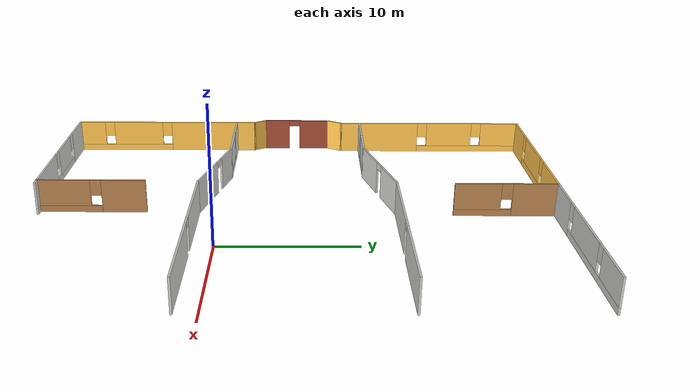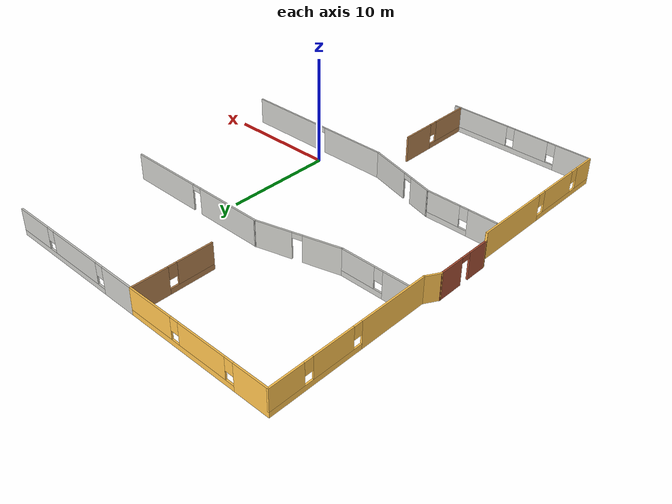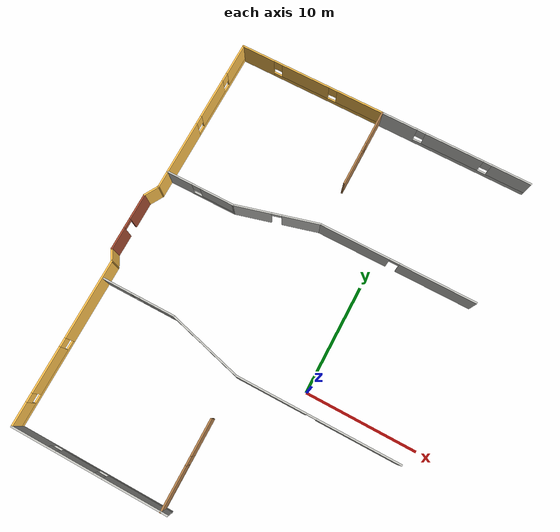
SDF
<sdf version="1.6">
 <model name="model">
  <pose>2.02965 5.6267 0 0 -0 0</pose>
  <link name="Wall_22">
   <pose>-21.3175 -11.3683 0 0 0 -1.5708</pose>
   <visual name="Wall_22_Visual_0">
    <pose>-3.98783 0 1.25 0 -0 0</pose>
    <geometry><box><size>7.27435 0.15 2.5</size></box></geometry>
    <material>
     <script><uri>file://media/materials/scripts/gazebo.material</uri><name>Gazebo/Grey</name></script>
     <ambient>1 0.764706 0.305882 1</ambient>
    </material>
    <meta><layer>0</layer></meta>
   </visual>
   <collision name="Wall_22_Collision_0">
    <geometry><box><size>7.27435 0.15 2.5</size></box></geometry>
    <pose>-3.98783 0 1.25 0 -0 0</pose>
   </collision>
   <visual name="Wall_22_Visual_1">
    <pose>3.63717 0 0.25 0 -0 0</pose>
    <geometry><box><size>7.97565 0.15 0.5</size></box></geometry>
    <material>
     <script><uri>file://media/materials/scripts/gazebo.material</uri><name>Gazebo/Grey</name></script>
     <ambient>1 0.764706 0.305882 1</ambient>
    </material>
    <meta><layer>0</layer></meta>
   </visual>
   <collision name="Wall_22_Collision_1">
    <geometry><box><size>7.97565 0.15 0.5</size></box></geometry>
    <pose>3.63717 0 0.25 0 -0 0</pose>
   </collision>
   <visual name="Wall_22_Visual_2">
    <pose>2.53115 0 1.5 0 -0 0</pose>
    <geometry><box><size>4.16361 0.15 2</size></box></geometry>
    <material>
     <script><uri>file://media/materials/scripts/gazebo.material</uri><name>Gazebo/Grey</name></script>
     <ambient>1 0.764706 0.305882 1</ambient>
    </material>
    <meta><layer>0</layer></meta>
   </visual>
   <collision name="Wall_22_Collision_2">
    <geometry><box><size>4.16361 0.15 2</size></box></geometry>
    <pose>2.53115 0 1.5 0 -0 0</pose>
   </collision>
   <visual name="Wall_22_Visual_3">
    <pose>6.51898 0 1.5 0 -0 0</pose>
    <geometry><box><size>2.21204 0.15 2</size></box></geometry>
    <material>
     <script><uri>file://media/materials/scripts/gazebo.material</uri><name>Gazebo/Grey</name></script>
     <ambient>1 0.764706 0.305882 1</ambient>
    </material>
    <meta><layer>0</layer></meta>
   </visual>
   <collision name="Wall_22_Collision_3">
    <geometry><box><size>2.21204 0.15 2</size></box></geometry>
    <pose>6.51898 0 1.5 0 -0 0</pose>
   </collision>
   <visual name="Wall_22_Visual_4">
    <pose>0.049349 0 1.9 0 -0 0</pose>
    <geometry><box><size>0.8 0.15 1.2</size></box></geometry>
    <material>
     <script><uri>file://media/materials/scripts/gazebo.material</uri><name>Gazebo/Grey</name></script>
     <ambient>1 0.764706 0.305882 1</ambient>
    </material>
    <meta><layer>0</layer></meta>
   </visual>
   <collision name="Wall_22_Collision_4">
    <geometry><box><size>0.8 0.15 1.2</size></box></geometry>
    <pose>0.049349 0 1.9 0 -0 0</pose>
   </collision>
   <visual name="Wall_22_Visual_5">
    <pose>5.01296 0 1.9 0 -0 0</pose>
    <geometry><box><size>0.8 0.15 1.2</size></box></geometry>
    <material>
     <script><uri>file://media/materials/scripts/gazebo.material</uri><name>Gazebo/Grey</name></script>
     <ambient>1 0.764706 0.305882 1</ambient>
    </material>
    <meta><layer>0</layer></meta>
   </visual>
   <collision name="Wall_22_Collision_5">
    <geometry><box><size>0.8 0.15 1.2</size></box></geometry>
    <pose>5.01296 0 1.9 0 -0 0</pose>
   </collision>
  </link>
  <link name="Wall_23">
   <pose>-14.2675 -18.9183 0 0 -0 0</pose>
   <visual name="Wall_23_Visual_0">
    <pose>-5.44036 0 1.25 0 -0 0</pose>
    <geometry><box><size>3.36928 0.15 2.5</size></box></geometry>
    <material>
     <script><uri>file://media/materials/scripts/gazebo.material</uri><name>Gazebo/CeilingTiled</name></script>
     <ambient>1 0.764706 0.305882 1</ambient>
    </material>
    <meta><layer>0</layer></meta>
   </visual>
   <collision name="Wall_23_Collision_0">
    <geometry><box><size>3.36928 0.15 2.5</size></box></geometry>
    <pose>-5.44036 0 1.25 0 -0 0</pose>
   </collision>
   <visual name="Wall_23_Visual_1">
    <pose>1.68464 0 0.25 0 -0 0</pose>
    <geometry><box><size>10.8807 0.15 0.5</size></box></geometry>
    <material>
     <script><uri>file://media/materials/scripts/gazebo.material</uri><name>Gazebo/CeilingTiled</name></script>
     <ambient>1 0.764706 0.305882 1</ambient>
    </material>
    <meta><layer>0</layer></meta>
   </visual>
   <collision name="Wall_23_Collision_1">
    <geometry><box><size>10.8807 0.15 0.5</size></box></geometry>
    <pose>1.68464 0 0.25 0 -0 0</pose>
   </collision>
   <visual name="Wall_23_Visual_2">
    <pose>-1.24407 0 1.5 0 -0 0</pose>
    <geometry><box><size>3.42331 0.15 2</size></box></geometry>
    <material>
     <script><uri>file://media/materials/scripts/gazebo.material</uri><name>Gazebo/CeilingTiled</name></script>
     <ambient>1 0.764706 0.305882 1</ambient>
    </material>
    <meta><layer>0</layer></meta>
   </visual>
   <collision name="Wall_23_Collision_2">
    <geometry><box><size>3.42331 0.15 2</size></box></geometry>
    <pose>-1.24407 0 1.5 0 -0 0</pose>
   </collision>
   <visual name="Wall_23_Visual_3">
    <pose>4.19629 0 1.5 0 -0 0</pose>
    <geometry><box><size>5.85741 0.15 2</size></box></geometry>
    <material>
     <script><uri>file://media/materials/scripts/gazebo.material</uri><name>Gazebo/CeilingTiled</name></script>
     <ambient>1 0.764706 0.305882 1</ambient>
    </material>
    <meta><layer>0</layer></meta>
   </visual>
   <collision name="Wall_23_Collision_3">
    <geometry><box><size>5.85741 0.15 2</size></box></geometry>
    <pose>4.19629 0 1.5 0 -0 0</pose>
   </collision>
   <visual name="Wall_23_Visual_4">
    <pose>-3.35572 0 1.9 0 -0 0</pose>
    <geometry><box><size>0.8 0.15 1.2</size></box></geometry>
    <material>
     <script><uri>file://media/materials/scripts/gazebo.material</uri><name>Gazebo/CeilingTiled</name></script>
     <ambient>1 0.764706 0.305882 1</ambient>
    </material>
    <meta><layer>0</layer></meta>
   </visual>
   <collision name="Wall_23_Collision_4">
    <geometry><box><size>0.8 0.15 1.2</size></box></geometry>
    <pose>-3.35572 0 1.9 0 -0 0</pose>
   </collision>
   <visual name="Wall_23_Visual_5">
    <pose>0.867585 0 1.9 0 -0 0</pose>
    <geometry><box><size>0.8 0.15 1.2</size></box></geometry>
    <material>
     <script><uri>file://media/materials/scripts/gazebo.material</uri><name>Gazebo/CeilingTiled</name></script>
     <ambient>1 0.764706 0.305882 1</ambient>
    </material>
    <meta><layer>0</layer></meta>
   </visual>
   <collision name="Wall_23_Collision_5">
    <geometry><box><size>0.8 0.15 1.2</size></box></geometry>
    <pose>0.867585 0 1.9 0 -0 0</pose>
   </collision>
  </link>
  <link name="Wall_36">
   <collision name="Wall_36_Collision">
    <geometry><box><size>1.25 0.15 2.5</size></box></geometry>
    <pose>0 0 1.25 0 -0 0</pose>
   </collision>
   <visual name="Wall_36_Visual">
    <pose>0 0 1.25 0 -0 0</pose>
    <geometry><box><size>1.25 0.15 2.5</size></box></geometry>
    <material>
     <script><uri>file://media/materials/scripts/gazebo.material</uri><name>Gazebo/Grey</name></script>
     <ambient>1 0.764706 0.305882 1</ambient>
    </material>
    <meta><layer>0</layer></meta>
   </visual>
   <pose>-21.5925 -3.34197 0 0 -0 2.0944</pose>
  </link>
  <link name="Wall_37">
   <pose>-21.8675 -0.190651 0 0 -0 1.5708</pose>
   <visual name="Wall_37_Visual_0">
    <pose>-1.69498 0 1.25 0 -0 0</pose>
    <geometry><box><size>2.11003 0.15 2.5</size></box></geometry>
    <material>
     <script><uri>file://media/materials/scripts/gazebo.material</uri><name>Gazebo/Bricks</name></script>
     <ambient>1 1 1 1</ambient>
    </material>
    <meta><layer>0</layer></meta>
   </visual>
   <collision name="Wall_37_Collision_0">
    <geometry><box><size>2.11003 0.15 2.5</size></box></geometry>
    <pose>-1.69498 0 1.25 0 -0 0</pose>
   </collision>
   <visual name="Wall_37_Visual_1">
    <pose>1.50502 0 1.25 0 -0 0</pose>
    <geometry><box><size>2.48997 0.15 2.5</size></box></geometry>
    <material>
     <script><uri>file://media/materials/scripts/gazebo.material</uri><name>Gazebo/Bricks</name></script>
     <ambient>1 1 1 1</ambient>
    </material>
    <meta><layer>0</layer></meta>
   </visual>
   <collision name="Wall_37_Collision_1">
    <geometry><box><size>2.48997 0.15 2.5</size></box></geometry>
    <pose>1.50502 0 1.25 0 -0 0</pose>
   </collision>
   <visual name="Wall_37_Visual_2">
    <pose>-0.189968 0 2.25 0 -0 0</pose>
    <geometry><box><size>0.9 0.15 0.5</size></box></geometry>
    <material>
     <script><uri>file://media/materials/scripts/gazebo.material</uri><name>Gazebo/Bricks</name></script>
     <ambient>1 1 1 1</ambient>
    </material>
    <meta><layer>0</layer></meta>
   </visual>
   <collision name="Wall_37_Collision_2">
    <geometry><box><size>0.9 0.15 0.5</size></box></geometry>
    <pose>-0.189968 0 2.25 0 -0 0</pose>
   </collision>
  </link>
  <link name="Wall_38">
   <collision name="Wall_38_Collision">
    <geometry><box><size>1.5 0.15 2.5</size></box></geometry>
    <pose>0 0 1.25 0 -0 0</pose>
   </collision>
   <visual name="Wall_38_Visual">
    <pose>0 0 1.25 0 -0 0</pose>
    <geometry><box><size>1.5 0.15 2.5</size></box></geometry>
    <material>
     <script><uri>file://media/materials/scripts/gazebo.material</uri><name>Gazebo/Grey</name></script>
     <ambient>1 0.764706 0.305882 1</ambient>
    </material>
    <meta><layer>0</layer></meta>
   </visual>
   <pose>-21.53 3.06892 0 0 -0 1.0472</pose>
  </link>
  <link name="Wall_40">
   <pose>-21.1925 11.2035 0 0 -0 1.5708</pose>
   <visual name="Wall_40_Visual_0">
    <pose>-4.29734 0 1.25 0 -0 0</pose>
    <geometry><box><size>6.65533 0.15 2.5</size></box></geometry>
    <material>
     <script><uri>file://media/materials/scripts/gazebo.material</uri><name>Gazebo/Grey</name></script>
     <ambient>1 0.764706 0.305882 1</ambient>
    </material>
    <meta><layer>0</layer></meta>
   </visual>
   <collision name="Wall_40_Collision_0">
    <geometry><box><size>6.65533 0.15 2.5</size></box></geometry>
    <pose>-4.29734 0 1.25 0 -0 0</pose>
   </collision>
   <visual name="Wall_40_Visual_1">
    <pose>3.32766 0 0.25 0 -0 0</pose>
    <geometry><box><size>8.59467 0.15 0.5</size></box></geometry>
    <material>
     <script><uri>file://media/materials/scripts/gazebo.material</uri><name>Gazebo/Grey</name></script>
     <ambient>1 0.764706 0.305882 1</ambient>
    </material>
    <meta><layer>0</layer></meta>
   </visual>
   <collision name="Wall_40_Collision_1">
    <geometry><box><size>8.59467 0.15 0.5</size></box></geometry>
    <pose>3.32766 0 0.25 0 -0 0</pose>
   </collision>
   <visual name="Wall_40_Visual_2">
    <pose>1.74939 0 1.5 0 -0 0</pose>
    <geometry><box><size>3.83812 0.15 2</size></box></geometry>
    <material>
     <script><uri>file://media/materials/scripts/gazebo.material</uri><name>Gazebo/Grey</name></script>
     <ambient>1 0.764706 0.305882 1</ambient>
    </material>
    <meta><layer>0</layer></meta>
   </visual>
   <collision name="Wall_40_Collision_2">
    <geometry><box><size>3.83812 0.15 2</size></box></geometry>
    <pose>1.74939 0 1.5 0 -0 0</pose>
   </collision>
   <visual name="Wall_40_Visual_3">
    <pose>6.04673 0 1.5 0 -0 0</pose>
    <geometry><box><size>3.15655 0.15 2</size></box></geometry>
    <material>
     <script><uri>file://media/materials/scripts/gazebo.material</uri><name>Gazebo/Grey</name></script>
     <ambient>1 0.764706 0.305882 1</ambient>
    </material>
    <meta><layer>0</layer></meta>
   </visual>
   <collision name="Wall_40_Collision_3">
    <geometry><box><size>3.15655 0.15 2</size></box></geometry>
    <pose>6.04673 0 1.5 0 -0 0</pose>
   </collision>
   <visual name="Wall_40_Visual_4">
    <pose>-0.569674 0 1.9 0 -0 0</pose>
    <geometry><box><size>0.8 0.15 1.2</size></box></geometry>
    <material>
     <script><uri>file://media/materials/scripts/gazebo.material</uri><name>Gazebo/Grey</name></script>
     <ambient>1 0.764706 0.305882 1</ambient>
    </material>
    <meta><layer>0</layer></meta>
   </visual>
   <collision name="Wall_40_Collision_4">
    <geometry><box><size>0.8 0.15 1.2</size></box></geometry>
    <pose>-0.569674 0 1.9 0 -0 0</pose>
   </collision>
   <visual name="Wall_40_Visual_5">
    <pose>4.06845 0 1.9 0 -0 0</pose>
    <geometry><box><size>0.8 0.15 1.2</size></box></geometry>
    <material>
     <script><uri>file://media/materials/scripts/gazebo.material</uri><name>Gazebo/Grey</name></script>
     <ambient>1 0.764706 0.305882 1</ambient>
    </material>
    <meta><layer>0</layer></meta>
   </visual>
   <collision name="Wall_40_Collision_5">
    <geometry><box><size>0.8 0.15 1.2</size></box></geometry>
    <pose>4.06845 0 1.9 0 -0 0</pose>
   </collision>
  </link>
  <link name="Wall_51">
   <pose>-14.2675 18.7535 0 0 -0 0</pose>
   <visual name="Wall_51_Visual_0">
    <pose>-5.3786 0 1.25 0 -0 0</pose>
    <geometry><box><size>3.2428 0.15 2.5</size></box></geometry>
    <material>
     <script><uri>file://media/materials/scripts/gazebo.material</uri><name>Gazebo/Grey</name></script>
     <ambient>1 0.764706 0.305882 1</ambient>
    </material>
    <meta><layer>0</layer></meta>
   </visual>
   <collision name="Wall_51_Collision_0">
    <geometry><box><size>3.2428 0.15 2.5</size></box></geometry>
    <pose>-5.3786 0 1.25 0 -0 0</pose>
   </collision>
   <visual name="Wall_51_Visual_1">
    <pose>1.6214 0 0.25 0 -0 0</pose>
    <geometry><box><size>10.7572 0.15 0.5</size></box></geometry>
    <material>
     <script><uri>file://media/materials/scripts/gazebo.material</uri><name>Gazebo/Grey</name></script>
     <ambient>1 0.764706 0.305882 1</ambient>
    </material>
    <meta><layer>0</layer></meta>
   </visual>
   <collision name="Wall_51_Collision_1">
    <geometry><box><size>10.7572 0.15 0.5</size></box></geometry>
    <pose>1.6214 0 0.25 0 -0 0</pose>
   </collision>
   <visual name="Wall_51_Visual_2">
    <pose>-0.618681 0 1.5 0 -0 0</pose>
    <geometry><box><size>4.67704 0.15 2</size></box></geometry>
    <material>
     <script><uri>file://media/materials/scripts/gazebo.material</uri><name>Gazebo/Grey</name></script>
     <ambient>1 0.764706 0.305882 1</ambient>
    </material>
    <meta><layer>0</layer></meta>
   </visual>
   <collision name="Wall_51_Collision_2">
    <geometry><box><size>4.67704 0.15 2</size></box></geometry>
    <pose>-0.618681 0 1.5 0 -0 0</pose>
   </collision>
   <visual name="Wall_51_Visual_3">
    <pose>4.75992 0 1.5 0 -0 0</pose>
    <geometry><box><size>4.48016 0.15 2</size></box></geometry>
    <material>
     <script><uri>file://media/materials/scripts/gazebo.material</uri><name>Gazebo/Grey</name></script>
     <ambient>1 0.764706 0.305882 1</ambient>
    </material>
    <meta><layer>0</layer></meta>
   </visual>
   <collision name="Wall_51_Collision_3">
    <geometry><box><size>4.48016 0.15 2</size></box></geometry>
    <pose>4.75992 0 1.5 0 -0 0</pose>
   </collision>
   <visual name="Wall_51_Visual_4">
    <pose>-3.3572 0 1.9 0 -0 0</pose>
    <geometry><box><size>0.8 0.15 1.2</size></box></geometry>
    <material>
     <script><uri>file://media/materials/scripts/gazebo.material</uri><name>Gazebo/Grey</name></script>
     <ambient>1 0.764706 0.305882 1</ambient>
    </material>
    <meta><layer>0</layer></meta>
   </visual>
   <collision name="Wall_51_Collision_4">
    <geometry><box><size>0.8 0.15 1.2</size></box></geometry>
    <pose>-3.3572 0 1.9 0 -0 0</pose>
   </collision>
   <visual name="Wall_51_Visual_5">
    <pose>2.11984 0 1.9 0 -0 0</pose>
    <geometry><box><size>0.8 0.15 1.2</size></box></geometry>
    <material>
     <script><uri>file://media/materials/scripts/gazebo.material</uri><name>Gazebo/Grey</name></script>
     <ambient>1 0.764706 0.305882 1</ambient>
    </material>
    <meta><layer>0</layer></meta>
   </visual>
   <collision name="Wall_51_Collision_5">
    <geometry><box><size>0.8 0.15 1.2</size></box></geometry>
    <pose>2.11984 0 1.9 0 -0 0</pose>
   </collision>
  </link>
  <link name="Wall_52">
   <pose>-0.292493 18.7535 0 0 -0 0</pose>
   <visual name="Wall_52_Visual_0">
    <pose>-5.39608 0 1.25 0 -0 0</pose>
    <geometry><box><size>3.45785 0.15 2.5</size></box></geometry>
    <material>
     <script><uri>file://media/materials/scripts/gazebo.material</uri><name>Gazebo/CeilingTiled</name></script>
     <ambient>1 0.764706 0.305882 1</ambient>
    </material>
    <meta><layer>0</layer></meta>
   </visual>
   <collision name="Wall_52_Collision_0">
    <geometry><box><size>3.45785 0.15 2.5</size></box></geometry>
    <pose>-5.39608 0 1.25 0 -0 0</pose>
   </collision>
   <visual name="Wall_52_Visual_1">
    <pose>1.72892 0 0.25 0 -0 0</pose>
    <geometry><box><size>10.7922 0.15 0.5</size></box></geometry>
    <material>
     <script><uri>file://media/materials/scripts/gazebo.material</uri><name>Gazebo/CeilingTiled</name></script>
     <ambient>1 0.764706 0.305882 1</ambient>
    </material>
    <meta><layer>0</layer></meta>
   </visual>
   <collision name="Wall_52_Collision_1">
    <geometry><box><size>10.7922 0.15 0.5</size></box></geometry>
    <pose>1.72892 0 0.25 0 -0 0</pose>
   </collision>
   <visual name="Wall_52_Visual_2">
    <pose>-0.115746 0 1.5 0 -0 0</pose>
    <geometry><box><size>5.50281 0.15 2</size></box></geometry>
    <material>
     <script><uri>file://media/materials/scripts/gazebo.material</uri><name>Gazebo/CeilingTiled</name></script>
     <ambient>1 0.764706 0.305882 1</ambient>
    </material>
    <meta><layer>0</layer></meta>
   </visual>
   <collision name="Wall_52_Collision_2">
    <geometry><box><size>5.50281 0.15 2</size></box></geometry>
    <pose>-0.115746 0 1.5 0 -0 0</pose>
   </collision>
   <visual name="Wall_52_Visual_3">
    <pose>5.28033 0 1.5 0 -0 0</pose>
    <geometry><box><size>3.68934 0.15 2</size></box></geometry>
    <material>
     <script><uri>file://media/materials/scripts/gazebo.material</uri><name>Gazebo/CeilingTiled</name></script>
     <ambient>1 0.764706 0.305882 1</ambient>
    </material>
    <meta><layer>0</layer></meta>
   </visual>
   <collision name="Wall_52_Collision_3">
    <geometry><box><size>3.68934 0.15 2</size></box></geometry>
    <pose>5.28033 0 1.5 0 -0 0</pose>
   </collision>
   <visual name="Wall_52_Visual_4">
    <pose>-3.26715 0 1.9 0 -0 0</pose>
    <geometry><box><size>0.8 0.15 1.2</size></box></geometry>
    <material>
     <script><uri>file://media/materials/scripts/gazebo.material</uri><name>Gazebo/CeilingTiled</name></script>
     <ambient>1 0.764706 0.305882 1</ambient>
    </material>
    <meta><layer>0</layer></meta>
   </visual>
   <collision name="Wall_52_Collision_4">
    <geometry><box><size>0.8 0.15 1.2</size></box></geometry>
    <pose>-3.26715 0 1.9 0 -0 0</pose>
   </collision>
   <visual name="Wall_52_Visual_5">
    <pose>3.03566 0 1.9 0 -0 0</pose>
    <geometry><box><size>0.8 0.15 1.2</size></box></geometry>
    <material>
     <script><uri>file://media/materials/scripts/gazebo.material</uri><name>Gazebo/CeilingTiled</name></script>
     <ambient>1 0.764706 0.305882 1</ambient>
    </material>
    <meta><layer>0</layer></meta>
   </visual>
   <collision name="Wall_52_Collision_5">
    <geometry><box><size>0.8 0.15 1.2</size></box></geometry>
    <pose>3.03566 0 1.9 0 -0 0</pose>
   </collision>
  </link>
  <link name="Wall_55">
   <pose>-17.9939 5.2199 0 0 -0 0</pose>
   <visual name="Wall_55_Visual_0">
    <pose>-2.01287 0 1.25 0 -0 0</pose>
    <geometry><box><size>2.47427 0.15 2.5</size></box></geometry>
    <material>
     <script><uri>file://media/materials/scripts/gazebo.material</uri><name>Gazebo/CeilingTiled</name></script>
     <ambient>0.333333 0.666667 1 1</ambient>
    </material>
    <meta><layer>0</layer></meta>
   </visual>
   <collision name="Wall_55_Collision_0">
    <geometry><box><size>2.47427 0.15 2.5</size></box></geometry>
    <pose>-2.01287 0 1.25 0 -0 0</pose>
   </collision>
   <visual name="Wall_55_Visual_1">
    <pose>1.23714 0 0.25 0 -0 0</pose>
    <geometry><box><size>4.02573 0.15 0.5</size></box></geometry>
    <material>
     <script><uri>file://media/materials/scripts/gazebo.material</uri><name>Gazebo/CeilingTiled</name></script>
     <ambient>0.333333 0.666667 1 1</ambient>
    </material>
    <meta><layer>0</layer></meta>
   </visual>
   <collision name="Wall_55_Collision_1">
    <geometry><box><size>4.02573 0.15 0.5</size></box></geometry>
    <pose>1.23714 0 0.25 0 -0 0</pose>
   </collision>
   <visual name="Wall_55_Visual_2">
    <pose>1.63714 0 1.5 0 -0 0</pose>
    <geometry><box><size>3.22573 0.15 2</size></box></geometry>
    <material>
     <script><uri>file://media/materials/scripts/gazebo.material</uri><name>Gazebo/CeilingTiled</name></script>
     <ambient>0.333333 0.666667 1 1</ambient>
    </material>
    <meta><layer>0</layer></meta>
   </visual>
   <collision name="Wall_55_Collision_2">
    <geometry><box><size>3.22573 0.15 2</size></box></geometry>
    <pose>1.63714 0 1.5 0 -0 0</pose>
   </collision>
   <visual name="Wall_55_Visual_3">
    <pose>-0.37573 0 1.9 0 -0 0</pose>
    <geometry><box><size>0.8 0.15 1.2</size></box></geometry>
    <material>
     <script><uri>file://media/materials/scripts/gazebo.material</uri><name>Gazebo/CeilingTiled</name></script>
     <ambient>0.333333 0.666667 1 1</ambient>
    </material>
    <meta><layer>0</layer></meta>
   </visual>
   <collision name="Wall_55_Collision_3">
    <geometry><box><size>0.8 0.15 1.2</size></box></geometry>
    <pose>-0.37573 0 1.9 0 -0 0</pose>
   </collision>
  </link>
  <link name="Wall_56">
   <pose>-11.1483 6.20341 0 0 -0 0.261799</pose>
   <visual name="Wall_56_Visual_0">
    <pose>-2.15033 0 1.25 0 -0 0</pose>
    <geometry><box><size>3.44934 0.15 2.5</size></box></geometry>
    <material>
     <script><uri>file://media/materials/scripts/gazebo.material</uri><name>Gazebo/CeilingTiled</name></script>
     <ambient>0.333333 0.666667 1 1</ambient>
    </material>
    <meta><layer>0</layer></meta>
   </visual>
   <collision name="Wall_56_Collision_0">
    <geometry><box><size>3.44934 0.15 2.5</size></box></geometry>
    <pose>-2.15033 0 1.25 0 -0 0</pose>
   </collision>
   <visual name="Wall_56_Visual_1">
    <pose>2.17467 0 1.25 0 -0 0</pose>
    <geometry><box><size>3.40066 0.15 2.5</size></box></geometry>
    <material>
     <script><uri>file://media/materials/scripts/gazebo.material</uri><name>Gazebo/CeilingTiled</name></script>
     <ambient>0.333333 0.666667 1 1</ambient>
    </material>
    <meta><layer>0</layer></meta>
   </visual>
   <collision name="Wall_56_Collision_1">
    <geometry><box><size>3.40066 0.15 2.5</size></box></geometry>
    <pose>2.17467 0 1.25 0 -0 0</pose>
   </collision>
   <visual name="Wall_56_Visual_2">
    <pose>0.024343 0 2.25 0 -0 0</pose>
    <geometry><box><size>0.9 0.15 0.5</size></box></geometry>
    <material>
     <script><uri>file://media/materials/scripts/gazebo.material</uri><name>Gazebo/CeilingTiled</name></script>
     <ambient>0.333333 0.666667 1 1</ambient>
    </material>
    <meta><layer>0</layer></meta>
   </visual>
   <collision name="Wall_56_Collision_2">
    <geometry><box><size>0.9 0.15 0.5</size></box></geometry>
    <pose>0.024343 0 2.25 0 -0 0</pose>
   </collision>
  </link>
  <link name="Wall_57">
   <pose>-0.302825 7.18693 0 0 -0 0</pose>
   <visual name="Wall_57_Visual_0">
    <pose>-3.97135 0 1.25 0 -0 0</pose>
    <geometry><box><size>6.55729 0.15 2.5</size></box></geometry>
    <material>
     <script><uri>file://media/materials/scripts/gazebo.material</uri><name>Gazebo/CeilingTiled</name></script>
     <ambient>0.333333 0.666667 1 1</ambient>
    </material>
    <meta><layer>0</layer></meta>
   </visual>
   <collision name="Wall_57_Collision_0">
    <geometry><box><size>6.55729 0.15 2.5</size></box></geometry>
    <pose>-3.97135 0 1.25 0 -0 0</pose>
   </collision>
   <visual name="Wall_57_Visual_1">
    <pose>3.72865 0 1.25 0 -0 0</pose>
    <geometry><box><size>7.04271 0.15 2.5</size></box></geometry>
    <material>
     <script><uri>file://media/materials/scripts/gazebo.material</uri><name>Gazebo/CeilingTiled</name></script>
     <ambient>0.333333 0.666667 1 1</ambient>
    </material>
    <meta><layer>0</layer></meta>
   </visual>
   <collision name="Wall_57_Collision_1">
    <geometry><box><size>7.04271 0.15 2.5</size></box></geometry>
    <pose>3.72865 0 1.25 0 -0 0</pose>
   </collision>
   <visual name="Wall_57_Visual_2">
    <pose>-0.242707 0 2.25 0 -0 0</pose>
    <geometry><box><size>0.9 0.15 0.5</size></box></geometry>
    <material>
     <script><uri>file://media/materials/scripts/gazebo.material</uri><name>Gazebo/CeilingTiled</name></script>
     <ambient>0.333333 0.666667 1 1</ambient>
    </material>
    <meta><layer>0</layer></meta>
   </visual>
   <collision name="Wall_57_Collision_2">
    <geometry><box><size>0.9 0.15 0.5</size></box></geometry>
    <pose>-0.242707 0 2.25 0 -0 0</pose>
   </collision>
  </link>
  <link name="Wall_61">
   <pose>-17.7875 -5.35828 0 0 -0 0</pose>
   <visual name="Wall_61_Visual_0">
    <pose>-2.04403 0 1.25 0 -0 0</pose>
    <geometry><box><size>2.66193 0.15 2.5</size></box></geometry>
    <material>
     <script><uri>file://media/materials/scripts/gazebo.material</uri><name>Gazebo/CeilingTiled</name></script>
     <ambient>0.333333 0.666667 1 1</ambient>
    </material>
    <meta><layer>0</layer></meta>
   </visual>
   <collision name="Wall_61_Collision_0">
    <geometry><box><size>2.66193 0.15 2.5</size></box></geometry>
    <pose>-2.04403 0 1.25 0 -0 0</pose>
   </collision>
   <visual name="Wall_61_Visual_1">
    <pose>1.33097 0 0.25 0 -0 0</pose>
    <geometry><box><size>4.08807 0.15 0.5</size></box></geometry>
    <material>
     <script><uri>file://media/materials/scripts/gazebo.material</uri><name>Gazebo/CeilingTiled</name></script>
     <ambient>0.333333 0.666667 1 1</ambient>
    </material>
    <meta><layer>0</layer></meta>
   </visual>
   <collision name="Wall_61_Collision_1">
    <geometry><box><size>4.08807 0.15 0.5</size></box></geometry>
    <pose>1.33097 0 0.25 0 -0 0</pose>
   </collision>
   <visual name="Wall_61_Visual_2">
    <pose>1.73097 0 1.5 0 -0 0</pose>
    <geometry><box><size>3.28807 0.15 2</size></box></geometry>
    <material>
     <script><uri>file://media/materials/scripts/gazebo.material</uri><name>Gazebo/CeilingTiled</name></script>
     <ambient>0.333333 0.666667 1 1</ambient>
    </material>
    <meta><layer>0</layer></meta>
   </visual>
   <collision name="Wall_61_Collision_2">
    <geometry><box><size>3.28807 0.15 2</size></box></geometry>
    <pose>1.73097 0 1.5 0 -0 0</pose>
   </collision>
   <visual name="Wall_61_Visual_3">
    <pose>-0.313068 0 1.9 0 -0 0</pose>
    <geometry><box><size>0.8 0.15 1.2</size></box></geometry>
    <material>
     <script><uri>file://media/materials/scripts/gazebo.material</uri><name>Gazebo/CeilingTiled</name></script>
     <ambient>0.333333 0.666667 1 1</ambient>
    </material>
    <meta><layer>0</layer></meta>
   </visual>
   <collision name="Wall_61_Collision_3">
    <geometry><box><size>0.8 0.15 1.2</size></box></geometry>
    <pose>-0.313068 0 1.9 0 -0 0</pose>
   </collision>
  </link>
  <link name="Wall_62">
   <pose>-11.0585 -6.27709 0 0 0 -0.261799</pose>
   <visual name="Wall_62_Visual_0">
    <pose>-2.4588 0 1.25 0 -0 0</pose>
    <geometry><box><size>2.33239 0.15 2.5</size></box></geometry>
    <material>
     <script><uri>file://media/materials/scripts/gazebo.material</uri><name>Gazebo/CeilingTiled</name></script>
     <ambient>0.333333 0.666667 1 1</ambient>
    </material>
    <meta><layer>0</layer></meta>
   </visual>
   <collision name="Wall_62_Collision_0">
    <geometry><box><size>2.33239 0.15 2.5</size></box></geometry>
    <pose>-2.4588 0 1.25 0 -0 0</pose>
   </collision>
   <visual name="Wall_62_Visual_1">
    <pose>1.6162 0 1.25 0 -0 0</pose>
    <geometry><box><size>4.01761 0.15 2.5</size></box></geometry>
    <material>
     <script><uri>file://media/materials/scripts/gazebo.material</uri><name>Gazebo/CeilingTiled</name></script>
     <ambient>0.333333 0.666667 1 1</ambient>
    </material>
    <meta><layer>0</layer></meta>
   </visual>
   <collision name="Wall_62_Collision_1">
    <geometry><box><size>4.01761 0.15 2.5</size></box></geometry>
    <pose>1.6162 0 1.25 0 -0 0</pose>
   </collision>
   <visual name="Wall_62_Visual_2">
    <pose>-0.842608 0 2.25 0 -0 0</pose>
    <geometry><box><size>0.9 0.15 0.5</size></box></geometry>
    <material>
     <script><uri>file://media/materials/scripts/gazebo.material</uri><name>Gazebo/CeilingTiled</name></script>
     <ambient>0.333333 0.666667 1 1</ambient>
    </material>
    <meta><layer>0</layer></meta>
   </visual>
   <collision name="Wall_62_Collision_2">
    <geometry><box><size>0.9 0.15 0.5</size></box></geometry>
    <pose>-0.842608 0 2.25 0 -0 0</pose>
   </collision>
  </link>
  <link name="Wall_63">
   <pose>-0.331362 -7.19589 0 0 -0 0</pose>
   <visual name="Wall_63_Visual_0">
    <pose>-4.17243 0 1.25 0 -0 0</pose>
    <geometry><box><size>6.40125 0.15 2.5</size></box></geometry>
    <material>
     <script><uri>file://media/materials/scripts/gazebo.material</uri><name>Gazebo/CeilingTiled</name></script>
     <ambient>0.333333 0.666667 1 1</ambient>
    </material>
    <meta><layer>0</layer></meta>
   </visual>
   <collision name="Wall_63_Collision_0">
    <geometry><box><size>6.40125 0.15 2.5</size></box></geometry>
    <pose>-4.17243 0 1.25 0 -0 0</pose>
   </collision>
   <visual name="Wall_63_Visual_1">
    <pose>3.65062 0 1.25 0 -0 0</pose>
    <geometry><box><size>7.44487 0.15 2.5</size></box></geometry>
    <material>
     <script><uri>file://media/materials/scripts/gazebo.material</uri><name>Gazebo/CeilingTiled</name></script>
     <ambient>0.333333 0.666667 1 1</ambient>
    </material>
    <meta><layer>0</layer></meta>
   </visual>
   <collision name="Wall_63_Collision_1">
    <geometry><box><size>7.44487 0.15 2.5</size></box></geometry>
    <pose>3.65062 0 1.25 0 -0 0</pose>
   </collision>
   <visual name="Wall_63_Visual_2">
    <pose>-0.52181 0 2.25 0 -0 0</pose>
    <geometry><box><size>0.9 0.15 0.5</size></box></geometry>
    <material>
     <script><uri>file://media/materials/scripts/gazebo.material</uri><name>Gazebo/CeilingTiled</name></script>
     <ambient>0.333333 0.666667 1 1</ambient>
    </material>
    <meta><layer>0</layer></meta>
   </visual>
   <collision name="Wall_63_Collision_2">
    <geometry><box><size>0.9 0.15 0.5</size></box></geometry>
    <pose>-0.52181 0 2.25 0 -0 0</pose>
   </collision>
  </link>
  <link name="Wall_73">
   <pose>-7.76956 -15.0131 0 0 0 -1.5708</pose>
   <visual name="Wall_73_Visual_0">
    <pose>-2.37032 0 1.25 0 -0 0</pose>
    <geometry><box><size>3.25936 0.15 2.5</size></box></geometry>
    <material>
     <script><uri>file://media/materials/scripts/gazebo.material</uri><name>Gazebo/Wood</name></script>
     <ambient>1 1 1 1</ambient>
    </material>
    <meta><layer>0</layer></meta>
   </visual>
   <collision name="Wall_73_Collision_0">
    <geometry><box><size>3.25936 0.15 2.5</size></box></geometry>
    <pose>-2.37032 0 1.25 0 -0 0</pose>
   </collision>
   <visual name="Wall_73_Visual_1">
    <pose>1.62968 0 0.25 0 -0 0</pose>
    <geometry><box><size>4.74064 0.15 0.5</size></box></geometry>
    <material>
     <script><uri>file://media/materials/scripts/gazebo.material</uri><name>Gazebo/Wood</name></script>
     <ambient>1 1 1 1</ambient>
    </material>
    <meta><layer>0</layer></meta>
   </visual>
   <collision name="Wall_73_Collision_1">
    <geometry><box><size>4.74064 0.15 0.5</size></box></geometry>
    <pose>1.62968 0 0.25 0 -0 0</pose>
   </collision>
   <visual name="Wall_73_Visual_2">
    <pose>2.02968 0 1.5 0 -0 0</pose>
    <geometry><box><size>3.94064 0.15 2</size></box></geometry>
    <material>
     <script><uri>file://media/materials/scripts/gazebo.material</uri><name>Gazebo/Wood</name></script>
     <ambient>1 1 1 1</ambient>
    </material>
    <meta><layer>0</layer></meta>
   </visual>
   <collision name="Wall_73_Collision_2">
    <geometry><box><size>3.94064 0.15 2</size></box></geometry>
    <pose>2.02968 0 1.5 0 -0 0</pose>
   </collision>
   <visual name="Wall_73_Visual_3">
    <pose>-0.340641 0 1.9 0 -0 0</pose>
    <geometry><box><size>0.8 0.15 1.2</size></box></geometry>
    <material>
     <script><uri>file://media/materials/scripts/gazebo.material</uri><name>Gazebo/Wood</name></script>
     <ambient>1 1 1 1</ambient>
    </material>
    <meta><layer>0</layer></meta>
   </visual>
   <collision name="Wall_73_Collision_3">
    <geometry><box><size>0.8 0.15 1.2</size></box></geometry>
    <pose>-0.340641 0 1.9 0 -0 0</pose>
   </collision>
  </link>
  <link name="Wall_80">
   <pose>-7.34249 15.0785 0 0 0 -1.5708</pose>
   <visual name="Wall_80_Visual_0">
    <pose>-2.09249 0 1.25 0 -0 0</pose>
    <geometry><box><size>3.31501 0.15 2.5</size></box></geometry>
    <material>
     <script><uri>file://media/materials/scripts/gazebo.material</uri><name>Gazebo/Wood</name></script>
     <ambient>1 1 1 1</ambient>
    </material>
    <meta><layer>0</layer></meta>
   </visual>
   <collision name="Wall_80_Collision_0">
    <geometry><box><size>3.31501 0.15 2.5</size></box></geometry>
    <pose>-2.09249 0 1.25 0 -0 0</pose>
   </collision>
   <visual name="Wall_80_Visual_1">
    <pose>1.65751 0 0.25 0 -0 0</pose>
    <geometry><box><size>4.18499 0.15 0.5</size></box></geometry>
    <material>
     <script><uri>file://media/materials/scripts/gazebo.material</uri><name>Gazebo/Wood</name></script>
     <ambient>1 1 1 1</ambient>
    </material>
    <meta><layer>0</layer></meta>
   </visual>
   <collision name="Wall_80_Collision_1">
    <geometry><box><size>4.18499 0.15 0.5</size></box></geometry>
    <pose>1.65751 0 0.25 0 -0 0</pose>
   </collision>
   <visual name="Wall_80_Visual_2">
    <pose>2.05751 0 1.5 0 -0 0</pose>
    <geometry><box><size>3.38498 0.15 2</size></box></geometry>
    <material>
     <script><uri>file://media/materials/scripts/gazebo.material</uri><name>Gazebo/Wood</name></script>
     <ambient>1 1 1 1</ambient>
    </material>
    <meta><layer>0</layer></meta>
   </visual>
   <collision name="Wall_80_Collision_2">
    <geometry><box><size>3.38498 0.15 2</size></box></geometry>
    <pose>2.05751 0 1.5 0 -0 0</pose>
   </collision>
   <visual name="Wall_80_Visual_3">
    <pose>-0.034985 0 1.9 0 -0 0</pose>
    <geometry><box><size>0.8 0.15 1.2</size></box></geometry>
    <material>
     <script><uri>file://media/materials/scripts/gazebo.material</uri><name>Gazebo/Wood</name></script>
     <ambient>1 1 1 1</ambient>
    </material>
    <meta><layer>0</layer></meta>
   </visual>
   <collision name="Wall_80_Collision_3">
    <geometry><box><size>0.8 0.15 1.2</size></box></geometry>
    <pose>-0.034985 0 1.9 0 -0 0</pose>
   </collision>
  </link>
  <static>1</static>
 </model>
</sdf>
